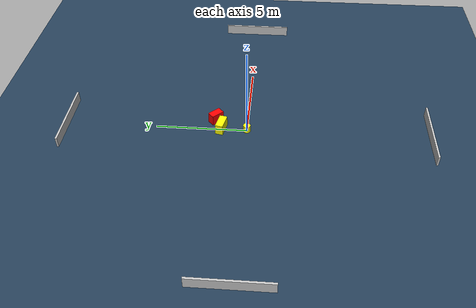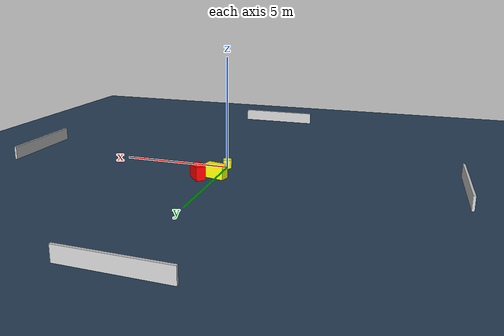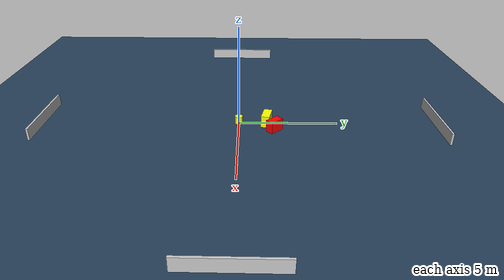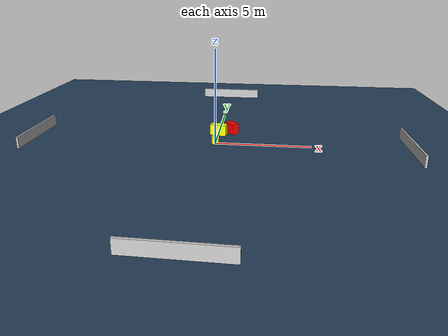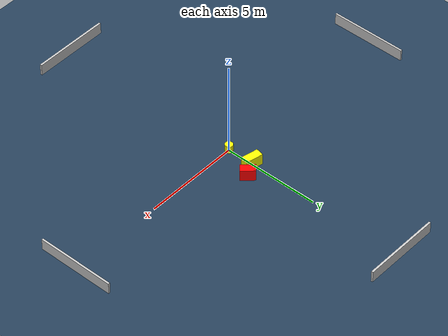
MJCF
<?xml version="1.0" ?>
<mujoco model="generated_environment">
  <option timestep="0.01" integrator="RK4" cone="elliptic"/>
  <default>
    <geom density="1"/>
  </default>
  <asset>
    <texture builtin="gradient" height="3072" name="skybox" rgb1="0.3 0.5 0.7" rgb2="0 0 0" type="skybox" width="512"/>
    <texture builtin="checker" height="300" name="groundplane" rgb1="0.2 0.3 0.4" rgb2="0.1 0.2 0.3" type="2d" width="300"/>
    <material name="groundplane" reflectance="0.2" texrepeat="5 5" texture="groundplane"/>
  </asset>
  <worldbody>
    <light dir="0 0 -1" directional="true" pos="0 0 1.5"/>
    <geom condim="3" friction="0.5 0.005 0.001" material="groundplane" name="floor" pos="0 0 0" size="0 0 0.05" type="plane"/>
    <body name="walls">
      <geom name="wall_1" condim="4" pos="-10.0 0.0 0.3" rgba="0.800000011920929 0.800000011920929 0.800000011920929 1.0" size="0.05 2.0 0.3" type="box"/>
      <geom name="wall_2" condim="4" pos="10.0 0.0 0.3" rgba="0.800000011920929 0.800000011920929 0.800000011920929 1.0" size="0.05 2.0 0.3" type="box"/>
      <geom name="wall_3" condim="4" pos="0.0 -10.0 0.3" rgba="0.800000011920929 0.800000011920929 0.800000011920929 1.0" size="2.0 0.05 0.3" type="box"/>
      <geom name="wall_4" condim="4" pos="0.0 10.0 0.3" rgba="0.800000011920929 0.800000011920929 0.800000011920929 1.0" size="2.0 0.05 0.3" type="box"/>
    </body>
    <body name="robot">
      <joint name="joint_x" type="slide" pos="0 0 0" axis="1 0 0"/>
      <joint name="joint_y" type="slide" pos="0 0 0" axis="0 1 0"/>
      <geom name="robot" type="cylinder" pos="0.0 0.0 0.2" size="0.2 0.2 0.0" mass="5.0" friction="1.0 0.005 0.0001" condim="4" rgba="1.0 1.0 0.0 1.0"/>
    </body>
    <body name="obstacle_1_movable">
      <geom name="obstacle_1_movable" condim="4" pos="0.03781053417328047 1.4171560872097848 0.3" euler="0 0 167.88632378933687" friction="0.0 0.005 0.001" rgba="1.0 1.0 0.0 1.0" size="0.4461304405342308 0.2093572643986554 0.3" type="box" mass="0.1"/>
      <joint type="free"/>
    </body>
    <body name="obstacle_2_static">
      <geom name="obstacle_2_static" condim="4" pos="0.7323170622207852 1.782374746997699 0.3" euler="0 0 133.21609578153453" friction="0.0 0.005 0.001" rgba="1.0 0.0 0.0 1.0" size="0.36911955499157645 0.2086043717985331 0.3" type="box"/>
    </body>
  </worldbody>
  <actuator>
    <motor name="actuator_x" joint="joint_x" gear="1" ctrlrange="-1 1"/>
    <motor name="actuator_y" joint="joint_y" gear="1" ctrlrange="-1 1"/>
  </actuator>
</mujoco>
